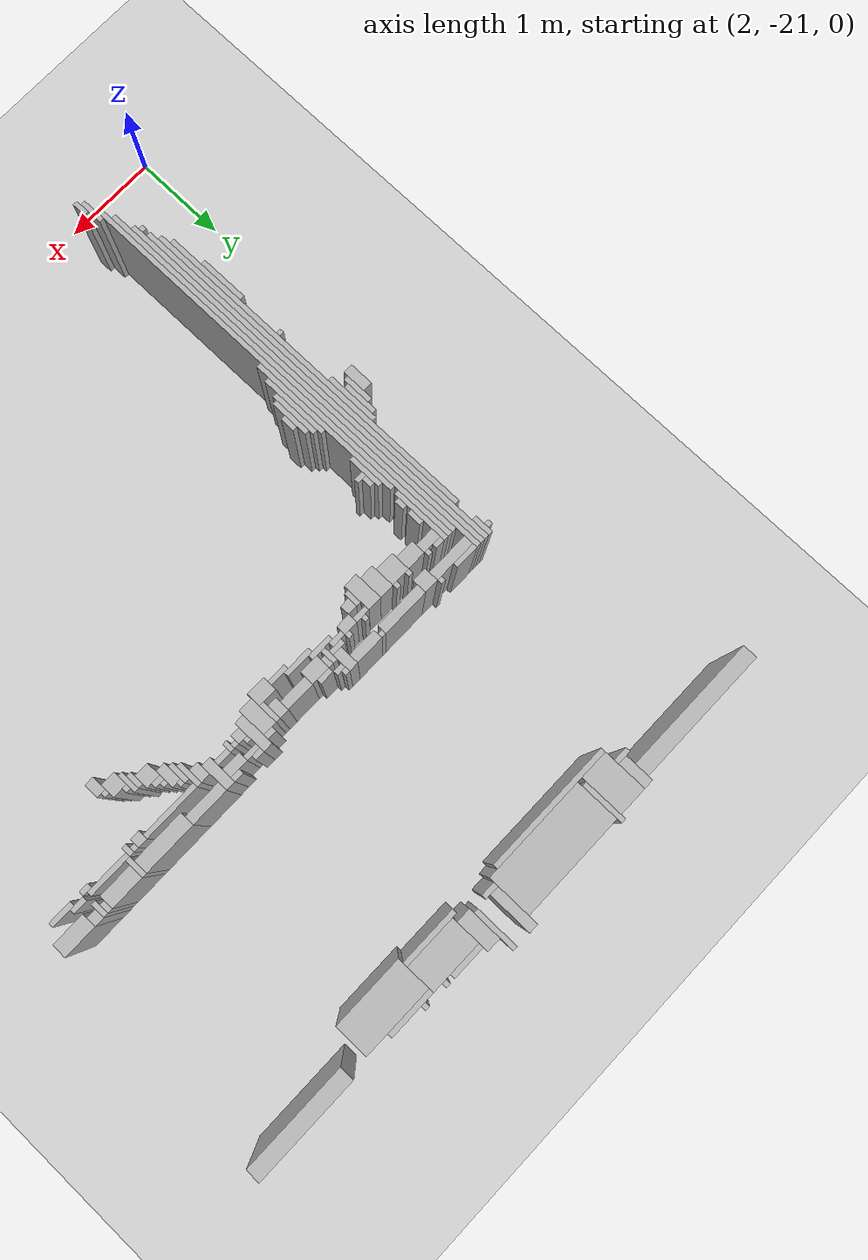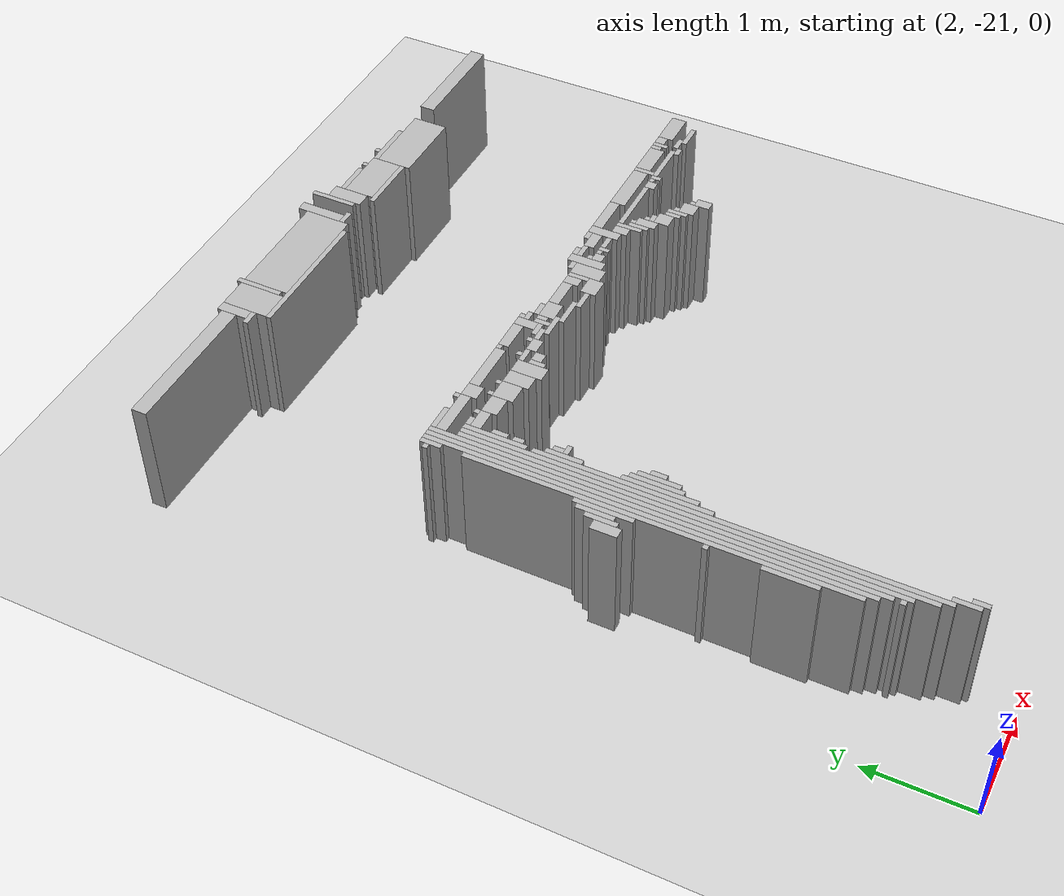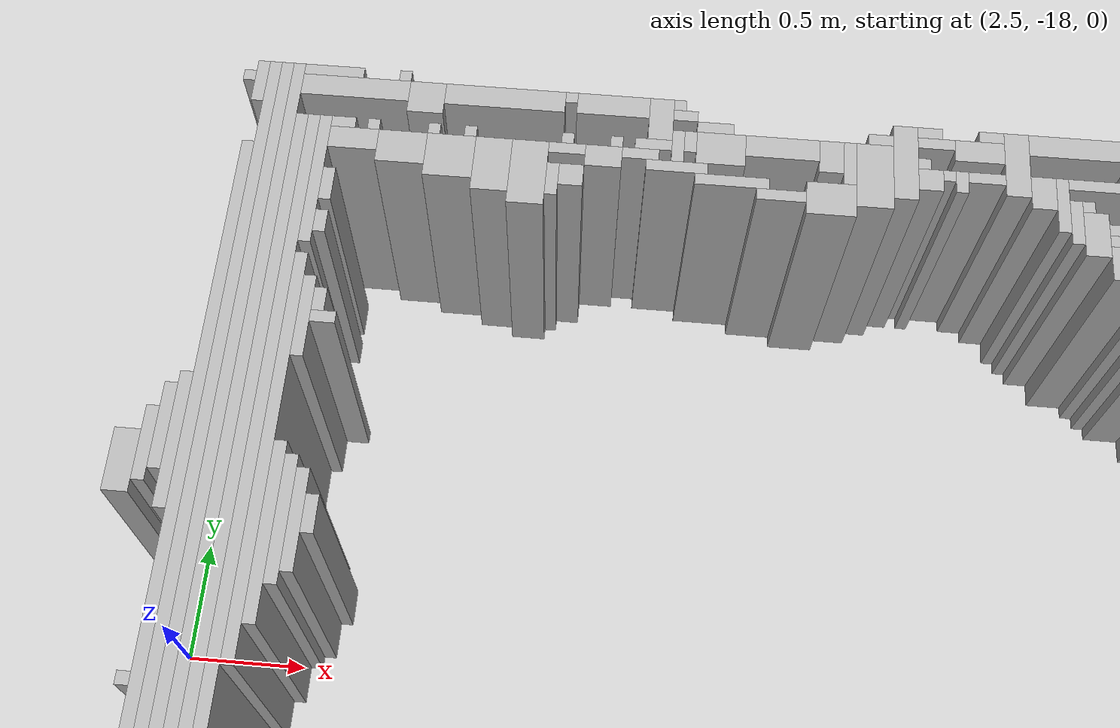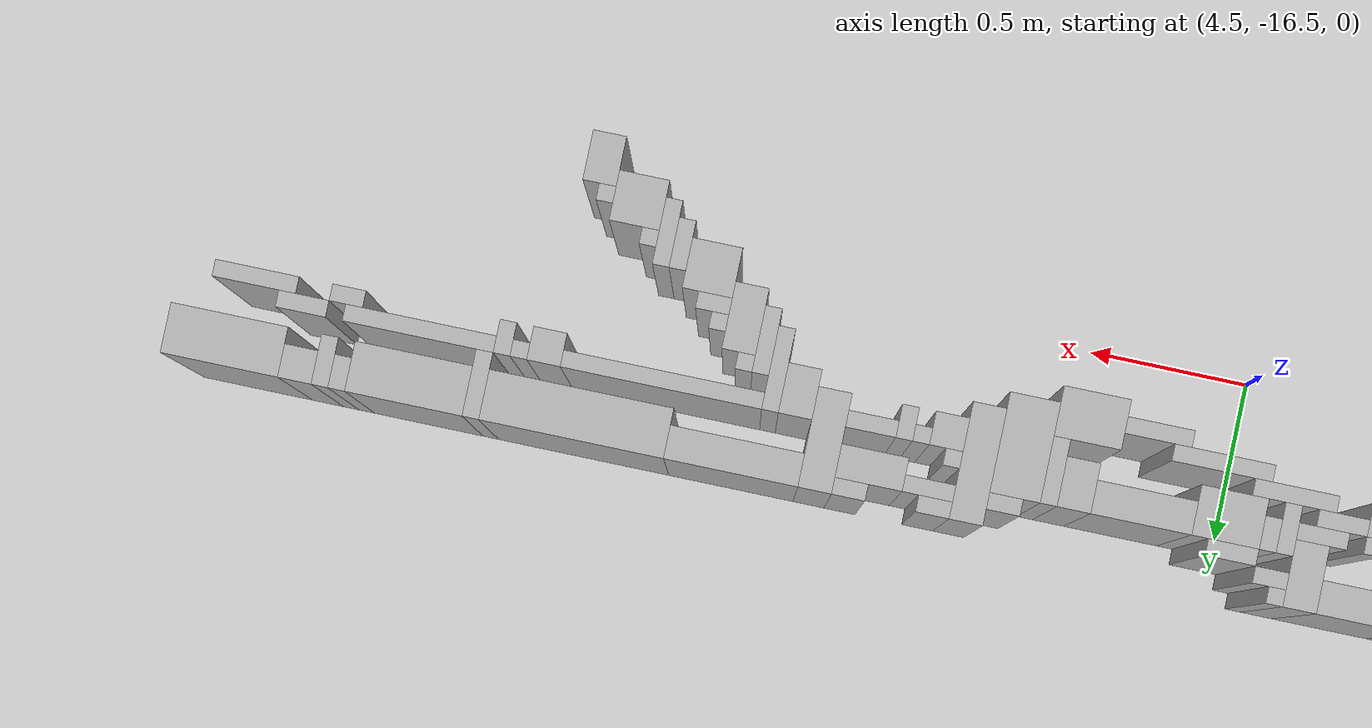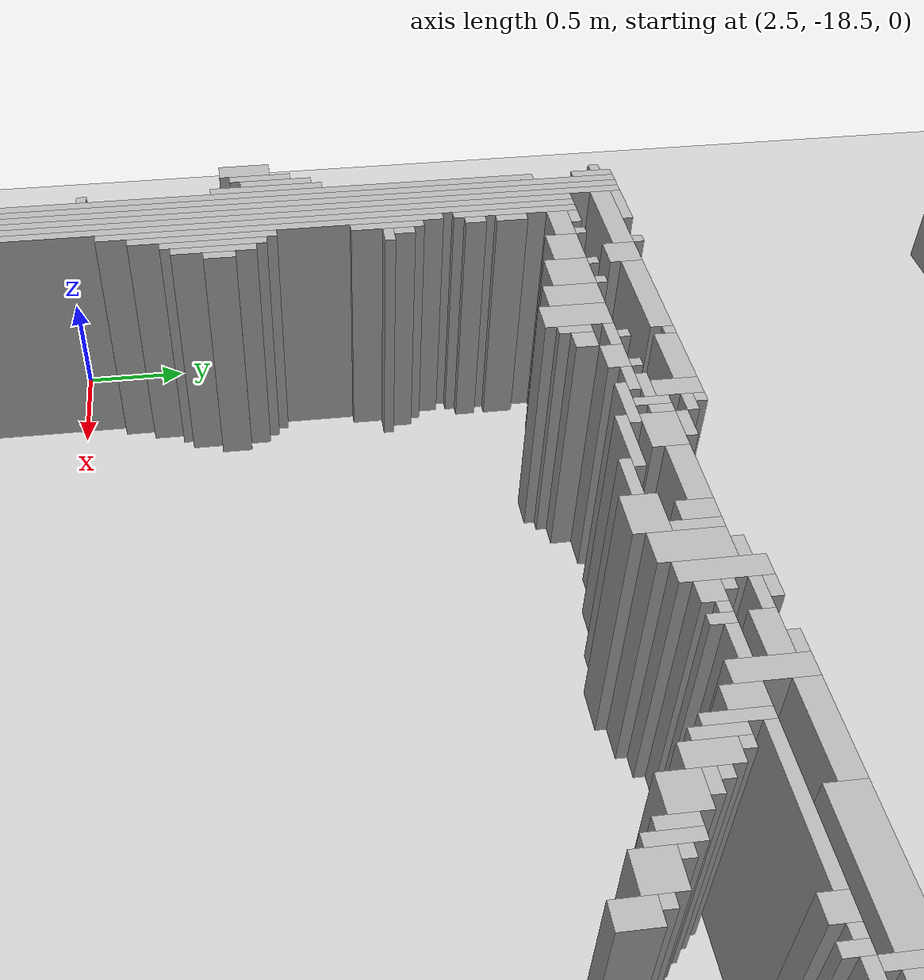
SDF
<sdf version="1.6">
 <world name="d10_floor">
  <include><uri>model://sun</uri></include>
  <include><uri>model://ground_plane</uri></include>
  <model name="d10_walls">
   <static>true</static>
   <link name="w15">
    <pose>3.000 -20.520 0.60 0 0 0</pose>
    <collision name="c"><geometry><box><size>0.050 0.150 1.20</size></box></geometry></collision>
    <visual name="v">
     <geometry><box><size>0.050 0.150 1.20</size></box></geometry>
     <material><ambient>0.6 0.6 0.6 1</ambient><diffuse>0.7 0.7 0.7 1</diffuse></material>
    </visual>
   </link>
   <link name="w21">
    <pose>2.950 -20.420 0.60 0 0 0</pose>
    <collision name="c"><geometry><box><size>0.050 0.250 1.20</size></box></geometry></collision>
    <visual name="v">
     <geometry><box><size>0.050 0.250 1.20</size></box></geometry>
     <material><ambient>0.6 0.6 0.6 1</ambient><diffuse>0.7 0.7 0.7 1</diffuse></material>
    </visual>
   </link>
   <link name="w41">
    <pose>2.900 -18.170 0.60 0 0 0</pose>
    <collision name="c"><geometry><box><size>0.050 4.350 1.20</size></box></geometry></collision>
    <visual name="v">
     <geometry><box><size>0.050 4.350 1.20</size></box></geometry>
     <material><ambient>0.6 0.6 0.6 1</ambient><diffuse>0.7 0.7 0.7 1</diffuse></material>
    </visual>
   </link>
   <link name="w50">
    <pose>2.850 -18.120 0.60 0 0 0</pose>
    <collision name="c"><geometry><box><size>0.050 4.250 1.20</size></box></geometry></collision>
    <visual name="v">
     <geometry><box><size>0.050 4.250 1.20</size></box></geometry>
     <material><ambient>0.6 0.6 0.6 1</ambient><diffuse>0.7 0.7 0.7 1</diffuse></material>
    </visual>
   </link>
   <link name="w59">
    <pose>2.800 -17.895 0.60 0 0 0</pose>
    <collision name="c"><geometry><box><size>0.050 4.300 1.20</size></box></geometry></collision>
    <visual name="v">
     <geometry><box><size>0.050 4.300 1.20</size></box></geometry>
     <material><ambient>0.6 0.6 0.6 1</ambient><diffuse>0.7 0.7 0.7 1</diffuse></material>
    </visual>
   </link>
   <link name="w64">
    <pose>2.750 -19.970 0.60 0 0 0</pose>
    <collision name="c"><geometry><box><size>0.050 0.050 1.20</size></box></geometry></collision>
    <visual name="v">
     <geometry><box><size>0.050 0.050 1.20</size></box></geometry>
     <material><ambient>0.6 0.6 0.6 1</ambient><diffuse>0.7 0.7 0.7 1</diffuse></material>
    </visual>
   </link>
   <link name="w68">
    <pose>2.750 -17.820 0.60 0 0 0</pose>
    <collision name="c"><geometry><box><size>0.050 4.150 1.20</size></box></geometry></collision>
    <visual name="v">
     <geometry><box><size>0.050 4.150 1.20</size></box></geometry>
     <material><ambient>0.6 0.6 0.6 1</ambient><diffuse>0.7 0.7 0.7 1</diffuse></material>
    </visual>
   </link>
   <link name="w71">
    <pose>2.700 -17.770 0.60 0 0 0</pose>
    <collision name="c"><geometry><box><size>0.050 4.050 1.20</size></box></geometry></collision>
    <visual name="v">
     <geometry><box><size>0.050 4.050 1.20</size></box></geometry>
     <material><ambient>0.6 0.6 0.6 1</ambient><diffuse>0.7 0.7 0.7 1</diffuse></material>
    </visual>
   </link>
   <link name="w75">
    <pose>2.650 -17.920 0.60 0 0 0</pose>
    <collision name="c"><geometry><box><size>0.050 3.550 1.20</size></box></geometry></collision>
    <visual name="v">
     <geometry><box><size>0.050 3.550 1.20</size></box></geometry>
     <material><ambient>0.6 0.6 0.6 1</ambient><diffuse>0.7 0.7 0.7 1</diffuse></material>
    </visual>
   </link>
   <link name="w93">
    <pose>2.600 -19.095 0.60 0 0 0</pose>
    <collision name="c"><geometry><box><size>0.050 0.500 1.20</size></box></geometry></collision>
    <visual name="v">
     <geometry><box><size>0.050 0.500 1.20</size></box></geometry>
     <material><ambient>0.6 0.6 0.6 1</ambient><diffuse>0.7 0.7 0.7 1</diffuse></material>
    </visual>
   </link>
   <link name="w126">
    <pose>2.600 -18.370 0.60 0 0 0</pose>
    <collision name="c"><geometry><box><size>0.050 0.050 1.20</size></box></geometry></collision>
    <visual name="v">
     <geometry><box><size>0.050 0.050 1.20</size></box></geometry>
     <material><ambient>0.6 0.6 0.6 1</ambient><diffuse>0.7 0.7 0.7 1</diffuse></material>
    </visual>
   </link>
   <link name="w128">
    <pose>2.950 -17.470 0.60 0 0 0</pose>
    <collision name="c"><geometry><box><size>0.050 1.650 1.20</size></box></geometry></collision>
    <visual name="v">
     <geometry><box><size>0.050 1.650 1.20</size></box></geometry>
     <material><ambient>0.6 0.6 0.6 1</ambient><diffuse>0.7 0.7 0.7 1</diffuse></material>
    </visual>
   </link>
   <link name="w133">
    <pose>3.000 -17.795 0.60 0 0 0</pose>
    <collision name="c"><geometry><box><size>0.050 0.700 1.20</size></box></geometry></collision>
    <visual name="v">
     <geometry><box><size>0.050 0.700 1.20</size></box></geometry>
     <material><ambient>0.6 0.6 0.6 1</ambient><diffuse>0.7 0.7 0.7 1</diffuse></material>
    </visual>
   </link>
   <link name="w152">
    <pose>3.050 -17.745 0.60 0 0 0</pose>
    <collision name="c"><geometry><box><size>0.050 0.500 1.20</size></box></geometry></collision>
    <visual name="v">
     <geometry><box><size>0.050 0.500 1.20</size></box></geometry>
     <material><ambient>0.6 0.6 0.6 1</ambient><diffuse>0.7 0.7 0.7 1</diffuse></material>
    </visual>
   </link>
   <link name="w158">
    <pose>3.100 -17.745 0.60 0 0 0</pose>
    <collision name="c"><geometry><box><size>0.050 0.400 1.20</size></box></geometry></collision>
    <visual name="v">
     <geometry><box><size>0.050 0.400 1.20</size></box></geometry>
     <material><ambient>0.6 0.6 0.6 1</ambient><diffuse>0.7 0.7 0.7 1</diffuse></material>
    </visual>
   </link>
   <link name="w197">
    <pose>3.150 -17.720 0.60 0 0 0</pose>
    <collision name="c"><geometry><box><size>0.050 0.150 1.20</size></box></geometry></collision>
    <visual name="v">
     <geometry><box><size>0.050 0.150 1.20</size></box></geometry>
     <material><ambient>0.6 0.6 0.6 1</ambient><diffuse>0.7 0.7 0.7 1</diffuse></material>
    </visual>
   </link>
   <link name="w206">
    <pose>2.600 -17.470 0.60 0 0 0</pose>
    <collision name="c"><geometry><box><size>0.050 0.550 1.20</size></box></geometry></collision>
    <visual name="v">
     <geometry><box><size>0.050 0.550 1.20</size></box></geometry>
     <material><ambient>0.6 0.6 0.6 1</ambient><diffuse>0.7 0.7 0.7 1</diffuse></material>
    </visual>
   </link>
   <link name="w215">
    <pose>2.425 -17.570 0.60 0 0 0</pose>
    <collision name="c"><geometry><box><size>0.100 0.250 1.20</size></box></geometry></collision>
    <visual name="v">
     <geometry><box><size>0.100 0.250 1.20</size></box></geometry>
     <material><ambient>0.6 0.6 0.6 1</ambient><diffuse>0.7 0.7 0.7 1</diffuse></material>
    </visual>
   </link>
   <link name="w221">
    <pose>2.500 -17.495 0.60 0 0 0</pose>
    <collision name="c"><geometry><box><size>0.050 0.300 1.20</size></box></geometry></collision>
    <visual name="v">
     <geometry><box><size>0.050 0.300 1.20</size></box></geometry>
     <material><ambient>0.6 0.6 0.6 1</ambient><diffuse>0.7 0.7 0.7 1</diffuse></material>
    </visual>
   </link>
   <link name="w229">
    <pose>2.550 -17.420 0.60 0 0 0</pose>
    <collision name="c"><geometry><box><size>0.050 0.350 1.20</size></box></geometry></collision>
    <visual name="v">
     <geometry><box><size>0.050 0.350 1.20</size></box></geometry>
     <material><ambient>0.6 0.6 0.6 1</ambient><diffuse>0.7 0.7 0.7 1</diffuse></material>
    </visual>
   </link>
   <link name="w247">
    <pose>3.000 -16.920 0.60 0 0 0</pose>
    <collision name="c"><geometry><box><size>0.050 0.350 1.20</size></box></geometry></collision>
    <visual name="v">
     <geometry><box><size>0.050 0.350 1.20</size></box></geometry>
     <material><ambient>0.6 0.6 0.6 1</ambient><diffuse>0.7 0.7 0.7 1</diffuse></material>
    </visual>
   </link>
   <link name="w251">
    <pose>3.075 -16.920 0.60 0 0 0</pose>
    <collision name="c"><geometry><box><size>0.100 0.050 1.20</size></box></geometry></collision>
    <visual name="v">
     <geometry><box><size>0.100 0.050 1.20</size></box></geometry>
     <material><ambient>0.6 0.6 0.6 1</ambient><diffuse>0.7 0.7 0.7 1</diffuse></material>
    </visual>
   </link>
   <link name="w254">
    <pose>3.050 -16.845 0.60 0 0 0</pose>
    <collision name="c"><geometry><box><size>0.050 0.100 1.20</size></box></geometry></collision>
    <visual name="v">
     <geometry><box><size>0.050 0.100 1.20</size></box></geometry>
     <material><ambient>0.6 0.6 0.6 1</ambient><diffuse>0.7 0.7 0.7 1</diffuse></material>
    </visual>
   </link>
   <link name="w261">
    <pose>6.575 -16.670 0.60 0 0 0</pose>
    <collision name="c"><geometry><box><size>0.100 0.150 1.20</size></box></geometry></collision>
    <visual name="v">
     <geometry><box><size>0.100 0.150 1.20</size></box></geometry>
     <material><ambient>0.6 0.6 0.6 1</ambient><diffuse>0.7 0.7 0.7 1</diffuse></material>
    </visual>
   </link>
   <link name="w269">
    <pose>6.450 -16.570 0.60 0 0 0</pose>
    <collision name="c"><geometry><box><size>0.150 0.150 1.20</size></box></geometry></collision>
    <visual name="v">
     <geometry><box><size>0.150 0.150 1.20</size></box></geometry>
     <material><ambient>0.6 0.6 0.6 1</ambient><diffuse>0.7 0.7 0.7 1</diffuse></material>
    </visual>
   </link>
   <link name="w274">
    <pose>2.950 -16.295 0.60 0 0 0</pose>
    <collision name="c"><geometry><box><size>0.050 0.600 1.20</size></box></geometry></collision>
    <visual name="v">
     <geometry><box><size>0.050 0.600 1.20</size></box></geometry>
     <material><ambient>0.6 0.6 0.6 1</ambient><diffuse>0.7 0.7 0.7 1</diffuse></material>
    </visual>
   </link>
   <link name="w275">
    <pose>6.350 -16.495 0.60 0 0 0</pose>
    <collision name="c"><geometry><box><size>0.050 0.200 1.20</size></box></geometry></collision>
    <visual name="v">
     <geometry><box><size>0.050 0.200 1.20</size></box></geometry>
     <material><ambient>0.6 0.6 0.6 1</ambient><diffuse>0.7 0.7 0.7 1</diffuse></material>
    </visual>
   </link>
   <link name="w276">
    <pose>6.550 -16.570 0.60 0 0 0</pose>
    <collision name="c"><geometry><box><size>0.050 0.050 1.20</size></box></geometry></collision>
    <visual name="v">
     <geometry><box><size>0.050 0.050 1.20</size></box></geometry>
     <material><ambient>0.6 0.6 0.6 1</ambient><diffuse>0.7 0.7 0.7 1</diffuse></material>
    </visual>
   </link>
   <link name="w281">
    <pose>3.000 -16.495 0.60 0 0 0</pose>
    <collision name="c"><geometry><box><size>0.050 0.100 1.20</size></box></geometry></collision>
    <visual name="v">
     <geometry><box><size>0.050 0.100 1.20</size></box></geometry>
     <material><ambient>0.6 0.6 0.6 1</ambient><diffuse>0.7 0.7 0.7 1</diffuse></material>
    </visual>
   </link>
   <link name="w282">
    <pose>6.300 -16.470 0.60 0 0 0</pose>
    <collision name="c"><geometry><box><size>0.050 0.150 1.20</size></box></geometry></collision>
    <visual name="v">
     <geometry><box><size>0.050 0.150 1.20</size></box></geometry>
     <material><ambient>0.6 0.6 0.6 1</ambient><diffuse>0.7 0.7 0.7 1</diffuse></material>
    </visual>
   </link>
   <link name="w285">
    <pose>6.200 -16.420 0.60 0 0 0</pose>
    <collision name="c"><geometry><box><size>0.150 0.150 1.20</size></box></geometry></collision>
    <visual name="v">
     <geometry><box><size>0.150 0.150 1.20</size></box></geometry>
     <material><ambient>0.6 0.6 0.6 1</ambient><diffuse>0.7 0.7 0.7 1</diffuse></material>
    </visual>
   </link>
   <link name="w286">
    <pose>6.400 -16.470 0.60 0 0 0</pose>
    <collision name="c"><geometry><box><size>0.050 0.050 1.20</size></box></geometry></collision>
    <visual name="v">
     <geometry><box><size>0.050 0.050 1.20</size></box></geometry>
     <material><ambient>0.6 0.6 0.6 1</ambient><diffuse>0.7 0.7 0.7 1</diffuse></material>
    </visual>
   </link>
   <link name="w290">
    <pose>3.000 -16.320 0.60 0 0 0</pose>
    <collision name="c"><geometry><box><size>0.050 0.150 1.20</size></box></geometry></collision>
    <visual name="v">
     <geometry><box><size>0.050 0.150 1.20</size></box></geometry>
     <material><ambient>0.6 0.6 0.6 1</ambient><diffuse>0.7 0.7 0.7 1</diffuse></material>
    </visual>
   </link>
   <link name="w291">
    <pose>6.075 -16.295 0.60 0 0 0</pose>
    <collision name="c"><geometry><box><size>0.100 0.200 1.20</size></box></geometry></collision>
    <visual name="v">
     <geometry><box><size>0.100 0.200 1.20</size></box></geometry>
     <material><ambient>0.6 0.6 0.6 1</ambient><diffuse>0.7 0.7 0.7 1</diffuse></material>
    </visual>
   </link>
   <link name="w297">
    <pose>3.800 -16.195 0.60 0 0 0</pose>
    <collision name="c"><geometry><box><size>0.150 0.300 1.20</size></box></geometry></collision>
    <visual name="v">
     <geometry><box><size>0.150 0.300 1.20</size></box></geometry>
     <material><ambient>0.6 0.6 0.6 1</ambient><diffuse>0.7 0.7 0.7 1</diffuse></material>
    </visual>
   </link>
   <link name="w298">
    <pose>6.000 -16.245 0.60 0 0 0</pose>
    <collision name="c"><geometry><box><size>0.050 0.200 1.20</size></box></geometry></collision>
    <visual name="v">
     <geometry><box><size>0.050 0.200 1.20</size></box></geometry>
     <material><ambient>0.6 0.6 0.6 1</ambient><diffuse>0.7 0.7 0.7 1</diffuse></material>
    </visual>
   </link>
   <link name="w299">
    <pose>6.175 -16.320 0.60 0 0 0</pose>
    <collision name="c"><geometry><box><size>0.100 0.050 1.20</size></box></geometry></collision>
    <visual name="v">
     <geometry><box><size>0.100 0.050 1.20</size></box></geometry>
     <material><ambient>0.6 0.6 0.6 1</ambient><diffuse>0.7 0.7 0.7 1</diffuse></material>
    </visual>
   </link>
   <link name="w310">
    <pose>3.650 -16.170 0.60 0 0 0</pose>
    <collision name="c"><geometry><box><size>0.150 0.250 1.20</size></box></geometry></collision>
    <visual name="v">
     <geometry><box><size>0.150 0.250 1.20</size></box></geometry>
     <material><ambient>0.6 0.6 0.6 1</ambient><diffuse>0.7 0.7 0.7 1</diffuse></material>
    </visual>
   </link>
   <link name="w311">
    <pose>3.900 -16.220 0.60 0 0 0</pose>
    <collision name="c"><geometry><box><size>0.050 0.150 1.20</size></box></geometry></collision>
    <visual name="v">
     <geometry><box><size>0.050 0.150 1.20</size></box></geometry>
     <material><ambient>0.6 0.6 0.6 1</ambient><diffuse>0.7 0.7 0.7 1</diffuse></material>
    </visual>
   </link>
   <link name="w312">
    <pose>5.025 -16.220 0.60 0 0 0</pose>
    <collision name="c"><geometry><box><size>0.200 0.150 1.20</size></box></geometry></collision>
    <visual name="v">
     <geometry><box><size>0.200 0.150 1.20</size></box></geometry>
     <material><ambient>0.6 0.6 0.6 1</ambient><diffuse>0.7 0.7 0.7 1</diffuse></material>
    </visual>
   </link>
   <link name="w313">
    <pose>5.950 -16.170 0.60 0 0 0</pose>
    <collision name="c"><geometry><box><size>0.050 0.250 1.20</size></box></geometry></collision>
    <visual name="v">
     <geometry><box><size>0.050 0.250 1.20</size></box></geometry>
     <material><ambient>0.6 0.6 0.6 1</ambient><diffuse>0.7 0.7 0.7 1</diffuse></material>
    </visual>
   </link>
   <link name="w314">
    <pose>6.150 -16.270 0.60 0 0 0</pose>
    <collision name="c"><geometry><box><size>0.050 0.050 1.20</size></box></geometry></collision>
    <visual name="v">
     <geometry><box><size>0.050 0.050 1.20</size></box></geometry>
     <material><ambient>0.6 0.6 0.6 1</ambient><diffuse>0.7 0.7 0.7 1</diffuse></material>
    </visual>
   </link>
   <link name="w328">
    <pose>3.475 -16.145 0.60 0 0 0</pose>
    <collision name="c"><geometry><box><size>0.200 0.200 1.20</size></box></geometry></collision>
    <visual name="v">
     <geometry><box><size>0.200 0.200 1.20</size></box></geometry>
     <material><ambient>0.6 0.6 0.6 1</ambient><diffuse>0.7 0.7 0.7 1</diffuse></material>
    </visual>
   </link>
   <link name="w329">
    <pose>3.975 -16.195 0.60 0 0 0</pose>
    <collision name="c"><geometry><box><size>0.100 0.100 1.20</size></box></geometry></collision>
    <visual name="v">
     <geometry><box><size>0.100 0.100 1.20</size></box></geometry>
     <material><ambient>0.6 0.6 0.6 1</ambient><diffuse>0.7 0.7 0.7 1</diffuse></material>
    </visual>
   </link>
   <link name="w330">
    <pose>4.825 -16.220 0.60 0 0 0</pose>
    <collision name="c"><geometry><box><size>0.200 0.050 1.20</size></box></geometry></collision>
    <visual name="v">
     <geometry><box><size>0.200 0.050 1.20</size></box></geometry>
     <material><ambient>0.6 0.6 0.6 1</ambient><diffuse>0.7 0.7 0.7 1</diffuse></material>
    </visual>
   </link>
   <link name="w331">
    <pose>5.200 -16.095 0.60 0 0 0</pose>
    <collision name="c"><geometry><box><size>0.150 0.300 1.20</size></box></geometry></collision>
    <visual name="v">
     <geometry><box><size>0.150 0.300 1.20</size></box></geometry>
     <material><ambient>0.6 0.6 0.6 1</ambient><diffuse>0.7 0.7 0.7 1</diffuse></material>
    </visual>
   </link>
   <link name="w347">
    <pose>3.275 -16.120 0.60 0 0 0</pose>
    <collision name="c"><geometry><box><size>0.200 0.150 1.20</size></box></geometry></collision>
    <visual name="v">
     <geometry><box><size>0.200 0.150 1.20</size></box></geometry>
     <material><ambient>0.6 0.6 0.6 1</ambient><diffuse>0.7 0.7 0.7 1</diffuse></material>
    </visual>
   </link>
   <link name="w348">
    <pose>4.625 -16.170 0.60 0 0 0</pose>
    <collision name="c"><geometry><box><size>0.300 0.050 1.20</size></box></geometry></collision>
    <visual name="v">
     <geometry><box><size>0.300 0.050 1.20</size></box></geometry>
     <material><ambient>0.6 0.6 0.6 1</ambient><diffuse>0.7 0.7 0.7 1</diffuse></material>
    </visual>
   </link>
   <link name="w349">
    <pose>5.325 -16.020 0.60 0 0 0</pose>
    <collision name="c"><geometry><box><size>0.100 0.350 1.20</size></box></geometry></collision>
    <visual name="v">
     <geometry><box><size>0.100 0.350 1.20</size></box></geometry>
     <material><ambient>0.6 0.6 0.6 1</ambient><diffuse>0.7 0.7 0.7 1</diffuse></material>
    </visual>
   </link>
   <link name="w350">
    <pose>5.875 -16.120 0.60 0 0 0</pose>
    <collision name="c"><geometry><box><size>0.100 0.150 1.20</size></box></geometry></collision>
    <visual name="v">
     <geometry><box><size>0.100 0.150 1.20</size></box></geometry>
     <material><ambient>0.6 0.6 0.6 1</ambient><diffuse>0.7 0.7 0.7 1</diffuse></material>
    </visual>
   </link>
   <link name="w351">
    <pose>6.050 -16.170 0.60 0 0 0</pose>
    <collision name="c"><geometry><box><size>0.050 0.050 1.20</size></box></geometry></collision>
    <visual name="v">
     <geometry><box><size>0.050 0.050 1.20</size></box></geometry>
     <material><ambient>0.6 0.6 0.6 1</ambient><diffuse>0.7 0.7 0.7 1</diffuse></material>
    </visual>
   </link>
   <link name="w376">
    <pose>3.075 -16.095 0.60 0 0 0</pose>
    <collision name="c"><geometry><box><size>0.200 0.100 1.20</size></box></geometry></collision>
    <visual name="v">
     <geometry><box><size>0.200 0.100 1.20</size></box></geometry>
     <material><ambient>0.6 0.6 0.6 1</ambient><diffuse>0.7 0.7 0.7 1</diffuse></material>
    </visual>
   </link>
   <link name="w377">
    <pose>4.100 -16.095 0.60 0 0 0</pose>
    <collision name="c"><geometry><box><size>0.150 0.100 1.20</size></box></geometry></collision>
    <visual name="v">
     <geometry><box><size>0.150 0.100 1.20</size></box></geometry>
     <material><ambient>0.6 0.6 0.6 1</ambient><diffuse>0.7 0.7 0.7 1</diffuse></material>
    </visual>
   </link>
   <link name="w378">
    <pose>4.400 -16.120 0.60 0 0 0</pose>
    <collision name="c"><geometry><box><size>0.250 0.050 1.20</size></box></geometry></collision>
    <visual name="v">
     <geometry><box><size>0.250 0.050 1.20</size></box></geometry>
     <material><ambient>0.6 0.6 0.6 1</ambient><diffuse>0.7 0.7 0.7 1</diffuse></material>
    </visual>
   </link>
   <link name="w379">
    <pose>5.100 -16.045 0.60 0 0 0</pose>
    <collision name="c"><geometry><box><size>0.050 0.200 1.20</size></box></geometry></collision>
    <visual name="v">
     <geometry><box><size>0.050 0.200 1.20</size></box></geometry>
     <material><ambient>0.6 0.6 0.6 1</ambient><diffuse>0.7 0.7 0.7 1</diffuse></material>
    </visual>
   </link>
   <link name="w380">
    <pose>5.425 -16.095 0.60 0 0 0</pose>
    <collision name="c"><geometry><box><size>0.100 0.100 1.20</size></box></geometry></collision>
    <visual name="v">
     <geometry><box><size>0.100 0.100 1.20</size></box></geometry>
     <material><ambient>0.6 0.6 0.6 1</ambient><diffuse>0.7 0.7 0.7 1</diffuse></material>
    </visual>
   </link>
   <link name="w381">
    <pose>5.550 -16.095 0.60 0 0 0</pose>
    <collision name="c"><geometry><box><size>0.050 0.100 1.20</size></box></geometry></collision>
    <visual name="v">
     <geometry><box><size>0.050 0.100 1.20</size></box></geometry>
     <material><ambient>0.6 0.6 0.6 1</ambient><diffuse>0.7 0.7 0.7 1</diffuse></material>
    </visual>
   </link>
   <link name="w382">
    <pose>5.775 -15.995 0.60 0 0 0</pose>
    <collision name="c"><geometry><box><size>0.100 0.300 1.20</size></box></geometry></collision>
    <visual name="v">
     <geometry><box><size>0.100 0.300 1.20</size></box></geometry>
     <material><ambient>0.6 0.6 0.6 1</ambient><diffuse>0.7 0.7 0.7 1</diffuse></material>
    </visual>
   </link>
   <link name="w383">
    <pose>6.625 -16.095 0.60 0 0 0</pose>
    <collision name="c"><geometry><box><size>0.100 0.100 1.20</size></box></geometry></collision>
    <visual name="v">
     <geometry><box><size>0.100 0.100 1.20</size></box></geometry>
     <material><ambient>0.6 0.6 0.6 1</ambient><diffuse>0.7 0.7 0.7 1</diffuse></material>
    </visual>
   </link>
   <link name="w384">
    <pose>6.750 -16.095 0.60 0 0 0</pose>
    <collision name="c"><geometry><box><size>0.050 0.100 1.20</size></box></geometry></collision>
    <visual name="v">
     <geometry><box><size>0.050 0.100 1.20</size></box></geometry>
     <material><ambient>0.6 0.6 0.6 1</ambient><diffuse>0.7 0.7 0.7 1</diffuse></material>
    </visual>
   </link>
   <link name="w385">
    <pose>7.225 -16.120 0.60 0 0 0</pose>
    <collision name="c"><geometry><box><size>0.100 0.050 1.20</size></box></geometry></collision>
    <visual name="v">
     <geometry><box><size>0.100 0.050 1.20</size></box></geometry>
     <material><ambient>0.6 0.6 0.6 1</ambient><diffuse>0.7 0.7 0.7 1</diffuse></material>
    </visual>
   </link>
   <link name="w386">
    <pose>7.500 -16.120 0.60 0 0 0</pose>
    <collision name="c"><geometry><box><size>0.250 0.050 1.20</size></box></geometry></collision>
    <visual name="v">
     <geometry><box><size>0.250 0.050 1.20</size></box></geometry>
     <material><ambient>0.6 0.6 0.6 1</ambient><diffuse>0.7 0.7 0.7 1</diffuse></material>
    </visual>
   </link>
   <link name="w409">
    <pose>3.950 -16.070 0.60 0 0 0</pose>
    <collision name="c"><geometry><box><size>0.150 0.050 1.20</size></box></geometry></collision>
    <visual name="v">
     <geometry><box><size>0.150 0.050 1.20</size></box></geometry>
     <material><ambient>0.6 0.6 0.6 1</ambient><diffuse>0.7 0.7 0.7 1</diffuse></material>
    </visual>
   </link>
   <link name="w410">
    <pose>4.250 -16.070 0.60 0 0 0</pose>
    <collision name="c"><geometry><box><size>0.150 0.050 1.20</size></box></geometry></collision>
    <visual name="v">
     <geometry><box><size>0.150 0.050 1.20</size></box></geometry>
     <material><ambient>0.6 0.6 0.6 1</ambient><diffuse>0.7 0.7 0.7 1</diffuse></material>
    </visual>
   </link>
   <link name="w411">
    <pose>4.400 -16.020 0.60 0 0 0</pose>
    <collision name="c"><geometry><box><size>0.050 0.150 1.20</size></box></geometry></collision>
    <visual name="v">
     <geometry><box><size>0.050 0.150 1.20</size></box></geometry>
     <material><ambient>0.6 0.6 0.6 1</ambient><diffuse>0.7 0.7 0.7 1</diffuse></material>
    </visual>
   </link>
   <link name="w412">
    <pose>4.575 -16.020 0.60 0 0 0</pose>
    <collision name="c"><geometry><box><size>0.200 0.150 1.20</size></box></geometry></collision>
    <visual name="v">
     <geometry><box><size>0.200 0.150 1.20</size></box></geometry>
     <material><ambient>0.6 0.6 0.6 1</ambient><diffuse>0.7 0.7 0.7 1</diffuse></material>
    </visual>
   </link>
   <link name="w413">
    <pose>5.025 -16.020 0.60 0 0 0</pose>
    <collision name="c"><geometry><box><size>0.100 0.150 1.20</size></box></geometry></collision>
    <visual name="v">
     <geometry><box><size>0.100 0.150 1.20</size></box></geometry>
     <material><ambient>0.6 0.6 0.6 1</ambient><diffuse>0.7 0.7 0.7 1</diffuse></material>
    </visual>
   </link>
   <link name="w414">
    <pose>5.500 -16.070 0.60 0 0 0</pose>
    <collision name="c"><geometry><box><size>0.050 0.050 1.20</size></box></geometry></collision>
    <visual name="v">
     <geometry><box><size>0.050 0.050 1.20</size></box></geometry>
     <material><ambient>0.6 0.6 0.6 1</ambient><diffuse>0.7 0.7 0.7 1</diffuse></material>
    </visual>
   </link>
   <link name="w415">
    <pose>5.650 -16.070 0.60 0 0 0</pose>
    <collision name="c"><geometry><box><size>0.150 0.050 1.20</size></box></geometry></collision>
    <visual name="v">
     <geometry><box><size>0.150 0.050 1.20</size></box></geometry>
     <material><ambient>0.6 0.6 0.6 1</ambient><diffuse>0.7 0.7 0.7 1</diffuse></material>
    </visual>
   </link>
   <link name="w416">
    <pose>6.275 -16.070 0.60 0 0 0</pose>
    <collision name="c"><geometry><box><size>0.600 0.050 1.20</size></box></geometry></collision>
    <visual name="v">
     <geometry><box><size>0.600 0.050 1.20</size></box></geometry>
     <material><ambient>0.6 0.6 0.6 1</ambient><diffuse>0.7 0.7 0.7 1</diffuse></material>
    </visual>
   </link>
   <link name="w417">
    <pose>6.700 -16.070 0.60 0 0 0</pose>
    <collision name="c"><geometry><box><size>0.050 0.050 1.20</size></box></geometry></collision>
    <visual name="v">
     <geometry><box><size>0.050 0.050 1.20</size></box></geometry>
     <material><ambient>0.6 0.6 0.6 1</ambient><diffuse>0.7 0.7 0.7 1</diffuse></material>
    </visual>
   </link>
   <link name="w418">
    <pose>7.000 -16.070 0.60 0 0 0</pose>
    <collision name="c"><geometry><box><size>0.450 0.050 1.20</size></box></geometry></collision>
    <visual name="v">
     <geometry><box><size>0.450 0.050 1.20</size></box></geometry>
     <material><ambient>0.6 0.6 0.6 1</ambient><diffuse>0.7 0.7 0.7 1</diffuse></material>
    </visual>
   </link>
   <link name="w419">
    <pose>7.350 -16.070 0.60 0 0 0</pose>
    <collision name="c"><geometry><box><size>0.150 0.050 1.20</size></box></geometry></collision>
    <visual name="v">
     <geometry><box><size>0.150 0.050 1.20</size></box></geometry>
     <material><ambient>0.6 0.6 0.6 1</ambient><diffuse>0.7 0.7 0.7 1</diffuse></material>
    </visual>
   </link>
   <link name="w434">
    <pose>3.025 -16.020 0.60 0 0 0</pose>
    <collision name="c"><geometry><box><size>0.100 0.050 1.20</size></box></geometry></collision>
    <visual name="v">
     <geometry><box><size>0.100 0.050 1.20</size></box></geometry>
     <material><ambient>0.6 0.6 0.6 1</ambient><diffuse>0.7 0.7 0.7 1</diffuse></material>
    </visual>
   </link>
   <link name="w435">
    <pose>3.150 -16.020 0.60 0 0 0</pose>
    <collision name="c"><geometry><box><size>0.050 0.050 1.20</size></box></geometry></collision>
    <visual name="v">
     <geometry><box><size>0.050 0.050 1.20</size></box></geometry>
     <material><ambient>0.6 0.6 0.6 1</ambient><diffuse>0.7 0.7 0.7 1</diffuse></material>
    </visual>
   </link>
   <link name="w436">
    <pose>3.400 -16.020 0.60 0 0 0</pose>
    <collision name="c"><geometry><box><size>0.050 0.050 1.20</size></box></geometry></collision>
    <visual name="v">
     <geometry><box><size>0.050 0.050 1.20</size></box></geometry>
     <material><ambient>0.6 0.6 0.6 1</ambient><diffuse>0.7 0.7 0.7 1</diffuse></material>
    </visual>
   </link>
   <link name="w437">
    <pose>3.550 -16.020 0.60 0 0 0</pose>
    <collision name="c"><geometry><box><size>0.050 0.050 1.20</size></box></geometry></collision>
    <visual name="v">
     <geometry><box><size>0.050 0.050 1.20</size></box></geometry>
     <material><ambient>0.6 0.6 0.6 1</ambient><diffuse>0.7 0.7 0.7 1</diffuse></material>
    </visual>
   </link>
   <link name="w438">
    <pose>3.950 -16.020 0.60 0 0 0</pose>
    <collision name="c"><geometry><box><size>0.050 0.050 1.20</size></box></geometry></collision>
    <visual name="v">
     <geometry><box><size>0.050 0.050 1.20</size></box></geometry>
     <material><ambient>0.6 0.6 0.6 1</ambient><diffuse>0.7 0.7 0.7 1</diffuse></material>
    </visual>
   </link>
   <link name="w439">
    <pose>4.150 -16.020 0.60 0 0 0</pose>
    <collision name="c"><geometry><box><size>0.050 0.050 1.20</size></box></geometry></collision>
    <visual name="v">
     <geometry><box><size>0.050 0.050 1.20</size></box></geometry>
     <material><ambient>0.6 0.6 0.6 1</ambient><diffuse>0.7 0.7 0.7 1</diffuse></material>
    </visual>
   </link>
   <link name="w440">
    <pose>4.300 -16.020 0.60 0 0 0</pose>
    <collision name="c"><geometry><box><size>0.150 0.050 1.20</size></box></geometry></collision>
    <visual name="v">
     <geometry><box><size>0.150 0.050 1.20</size></box></geometry>
     <material><ambient>0.6 0.6 0.6 1</ambient><diffuse>0.7 0.7 0.7 1</diffuse></material>
    </visual>
   </link>
   <link name="w441">
    <pose>4.450 -15.995 0.60 0 0 0</pose>
    <collision name="c"><geometry><box><size>0.050 0.100 1.20</size></box></geometry></collision>
    <visual name="v">
     <geometry><box><size>0.050 0.100 1.20</size></box></geometry>
     <material><ambient>0.6 0.6 0.6 1</ambient><diffuse>0.7 0.7 0.7 1</diffuse></material>
    </visual>
   </link>
   <link name="w442">
    <pose>4.825 -15.995 0.60 0 0 0</pose>
    <collision name="c"><geometry><box><size>0.300 0.100 1.20</size></box></geometry></collision>
    <visual name="v">
     <geometry><box><size>0.300 0.100 1.20</size></box></geometry>
     <material><ambient>0.6 0.6 0.6 1</ambient><diffuse>0.7 0.7 0.7 1</diffuse></material>
    </visual>
   </link>
   <link name="w443">
    <pose>5.400 -16.020 0.60 0 0 0</pose>
    <collision name="c"><geometry><box><size>0.050 0.050 1.20</size></box></geometry></collision>
    <visual name="v">
     <geometry><box><size>0.050 0.050 1.20</size></box></geometry>
     <material><ambient>0.6 0.6 0.6 1</ambient><diffuse>0.7 0.7 0.7 1</diffuse></material>
    </visual>
   </link>
   <link name="w444">
    <pose>6.800 -15.945 0.60 0 0 0</pose>
    <collision name="c"><geometry><box><size>0.050 0.200 1.20</size></box></geometry></collision>
    <visual name="v">
     <geometry><box><size>0.050 0.200 1.20</size></box></geometry>
     <material><ambient>0.6 0.6 0.6 1</ambient><diffuse>0.7 0.7 0.7 1</diffuse></material>
    </visual>
   </link>
   <link name="w458">
    <pose>4.325 -15.895 0.60 0 0 0</pose>
    <collision name="c"><geometry><box><size>0.100 0.200 1.20</size></box></geometry></collision>
    <visual name="v">
     <geometry><box><size>0.100 0.200 1.20</size></box></geometry>
     <material><ambient>0.6 0.6 0.6 1</ambient><diffuse>0.7 0.7 0.7 1</diffuse></material>
    </visual>
   </link>
   <link name="w459">
    <pose>5.625 -15.945 0.60 0 0 0</pose>
    <collision name="c"><geometry><box><size>0.200 0.100 1.20</size></box></geometry></collision>
    <visual name="v">
     <geometry><box><size>0.200 0.100 1.20</size></box></geometry>
     <material><ambient>0.6 0.6 0.6 1</ambient><diffuse>0.7 0.7 0.7 1</diffuse></material>
    </visual>
   </link>
   <link name="w460">
    <pose>6.500 -15.920 0.60 0 0 0</pose>
    <collision name="c"><geometry><box><size>0.550 0.150 1.20</size></box></geometry></collision>
    <visual name="v">
     <geometry><box><size>0.550 0.150 1.20</size></box></geometry>
     <material><ambient>0.6 0.6 0.6 1</ambient><diffuse>0.7 0.7 0.7 1</diffuse></material>
    </visual>
   </link>
   <link name="w461">
    <pose>7.000 -15.920 0.60 0 0 0</pose>
    <collision name="c"><geometry><box><size>0.350 0.150 1.20</size></box></geometry></collision>
    <visual name="v">
     <geometry><box><size>0.350 0.150 1.20</size></box></geometry>
     <material><ambient>0.6 0.6 0.6 1</ambient><diffuse>0.7 0.7 0.7 1</diffuse></material>
    </visual>
   </link>
   <link name="w462">
    <pose>7.250 -15.920 0.60 0 0 0</pose>
    <collision name="c"><geometry><box><size>0.050 0.150 1.20</size></box></geometry></collision>
    <visual name="v">
     <geometry><box><size>0.050 0.150 1.20</size></box></geometry>
     <material><ambient>0.6 0.6 0.6 1</ambient><diffuse>0.7 0.7 0.7 1</diffuse></material>
    </visual>
   </link>
   <link name="w463">
    <pose>7.550 -15.920 0.60 0 0 0</pose>
    <collision name="c"><geometry><box><size>0.350 0.150 1.20</size></box></geometry></collision>
    <visual name="v">
     <geometry><box><size>0.350 0.150 1.20</size></box></geometry>
     <material><ambient>0.6 0.6 0.6 1</ambient><diffuse>0.7 0.7 0.7 1</diffuse></material>
    </visual>
   </link>
   <link name="w475">
    <pose>2.650 -15.845 0.60 0 0 0</pose>
    <collision name="c"><geometry><box><size>0.050 0.200 1.20</size></box></geometry></collision>
    <visual name="v">
     <geometry><box><size>0.050 0.200 1.20</size></box></geometry>
     <material><ambient>0.6 0.6 0.6 1</ambient><diffuse>0.7 0.7 0.7 1</diffuse></material>
    </visual>
   </link>
   <link name="w476">
    <pose>3.350 -15.870 0.60 0 0 0</pose>
    <collision name="c"><geometry><box><size>0.150 0.150 1.20</size></box></geometry></collision>
    <visual name="v">
     <geometry><box><size>0.150 0.150 1.20</size></box></geometry>
     <material><ambient>0.6 0.6 0.6 1</ambient><diffuse>0.7 0.7 0.7 1</diffuse></material>
    </visual>
   </link>
   <link name="w477">
    <pose>4.550 -15.920 0.60 0 0 0</pose>
    <collision name="c"><geometry><box><size>0.150 0.050 1.20</size></box></geometry></collision>
    <visual name="v">
     <geometry><box><size>0.150 0.050 1.20</size></box></geometry>
     <material><ambient>0.6 0.6 0.6 1</ambient><diffuse>0.7 0.7 0.7 1</diffuse></material>
    </visual>
   </link>
   <link name="w478">
    <pose>5.225 -15.920 0.60 0 0 0</pose>
    <collision name="c"><geometry><box><size>0.100 0.050 1.20</size></box></geometry></collision>
    <visual name="v">
     <geometry><box><size>0.100 0.050 1.20</size></box></geometry>
     <material><ambient>0.6 0.6 0.6 1</ambient><diffuse>0.7 0.7 0.7 1</diffuse></material>
    </visual>
   </link>
   <link name="w479">
    <pose>5.450 -15.920 0.60 0 0 0</pose>
    <collision name="c"><geometry><box><size>0.150 0.050 1.20</size></box></geometry></collision>
    <visual name="v">
     <geometry><box><size>0.150 0.050 1.20</size></box></geometry>
     <material><ambient>0.6 0.6 0.6 1</ambient><diffuse>0.7 0.7 0.7 1</diffuse></material>
    </visual>
   </link>
   <link name="w480">
    <pose>6.025 -15.895 0.60 0 0 0</pose>
    <collision name="c"><geometry><box><size>0.400 0.100 1.20</size></box></geometry></collision>
    <visual name="v">
     <geometry><box><size>0.400 0.100 1.20</size></box></geometry>
     <material><ambient>0.6 0.6 0.6 1</ambient><diffuse>0.7 0.7 0.7 1</diffuse></material>
    </visual>
   </link>
   <link name="w481">
    <pose>7.200 -15.895 0.60 0 0 0</pose>
    <collision name="c"><geometry><box><size>0.050 0.100 1.20</size></box></geometry></collision>
    <visual name="v">
     <geometry><box><size>0.050 0.100 1.20</size></box></geometry>
     <material><ambient>0.6 0.6 0.6 1</ambient><diffuse>0.7 0.7 0.7 1</diffuse></material>
    </visual>
   </link>
   <link name="w482">
    <pose>7.325 -15.895 0.60 0 0 0</pose>
    <collision name="c"><geometry><box><size>0.100 0.100 1.20</size></box></geometry></collision>
    <visual name="v">
     <geometry><box><size>0.100 0.100 1.20</size></box></geometry>
     <material><ambient>0.6 0.6 0.6 1</ambient><diffuse>0.7 0.7 0.7 1</diffuse></material>
    </visual>
   </link>
   <link name="w489">
    <pose>3.050 -15.845 0.60 0 0 0</pose>
    <collision name="c"><geometry><box><size>0.450 0.100 1.20</size></box></geometry></collision>
    <visual name="v">
     <geometry><box><size>0.450 0.100 1.20</size></box></geometry>
     <material><ambient>0.6 0.6 0.6 1</ambient><diffuse>0.7 0.7 0.7 1</diffuse></material>
    </visual>
   </link>
   <link name="w490">
    <pose>3.675 -15.845 0.60 0 0 0</pose>
    <collision name="c"><geometry><box><size>0.500 0.100 1.20</size></box></geometry></collision>
    <visual name="v">
     <geometry><box><size>0.500 0.100 1.20</size></box></geometry>
     <material><ambient>0.6 0.6 0.6 1</ambient><diffuse>0.7 0.7 0.7 1</diffuse></material>
    </visual>
   </link>
   <link name="w491">
    <pose>4.125 -15.845 0.60 0 0 0</pose>
    <collision name="c"><geometry><box><size>0.300 0.100 1.20</size></box></geometry></collision>
    <visual name="v">
     <geometry><box><size>0.300 0.100 1.20</size></box></geometry>
     <material><ambient>0.6 0.6 0.6 1</ambient><diffuse>0.7 0.7 0.7 1</diffuse></material>
    </visual>
   </link>
   <link name="w492">
    <pose>4.425 -15.870 0.60 0 0 0</pose>
    <collision name="c"><geometry><box><size>0.100 0.050 1.20</size></box></geometry></collision>
    <visual name="v">
     <geometry><box><size>0.100 0.050 1.20</size></box></geometry>
     <material><ambient>0.6 0.6 0.6 1</ambient><diffuse>0.7 0.7 0.7 1</diffuse></material>
    </visual>
   </link>
   <link name="w493">
    <pose>5.425 -15.870 0.60 0 0 0</pose>
    <collision name="c"><geometry><box><size>0.100 0.050 1.20</size></box></geometry></collision>
    <visual name="v">
     <geometry><box><size>0.100 0.050 1.20</size></box></geometry>
     <material><ambient>0.6 0.6 0.6 1</ambient><diffuse>0.7 0.7 0.7 1</diffuse></material>
    </visual>
   </link>
   <link name="w494">
    <pose>5.675 -15.870 0.60 0 0 0</pose>
    <collision name="c"><geometry><box><size>0.100 0.050 1.20</size></box></geometry></collision>
    <visual name="v">
     <geometry><box><size>0.100 0.050 1.20</size></box></geometry>
     <material><ambient>0.6 0.6 0.6 1</ambient><diffuse>0.7 0.7 0.7 1</diffuse></material>
    </visual>
   </link>
   <link name="w498">
    <pose>2.600 -15.820 0.60 0 0 0</pose>
    <collision name="c"><geometry><box><size>0.050 0.050 1.20</size></box></geometry></collision>
    <visual name="v">
     <geometry><box><size>0.050 0.050 1.20</size></box></geometry>
     <material><ambient>0.6 0.6 0.6 1</ambient><diffuse>0.7 0.7 0.7 1</diffuse></material>
    </visual>
   </link>
   <link name="w499">
    <pose>3.950 -15.820 0.60 0 0 0</pose>
    <collision name="c"><geometry><box><size>0.050 0.050 1.20</size></box></geometry></collision>
    <visual name="v">
     <geometry><box><size>0.050 0.050 1.20</size></box></geometry>
     <material><ambient>0.6 0.6 0.6 1</ambient><diffuse>0.7 0.7 0.7 1</diffuse></material>
    </visual>
   </link>
   <link name="w500">
    <pose>4.400 -15.820 0.60 0 0 0</pose>
    <collision name="c"><geometry><box><size>0.050 0.050 1.20</size></box></geometry></collision>
    <visual name="v">
     <geometry><box><size>0.050 0.050 1.20</size></box></geometry>
     <material><ambient>0.6 0.6 0.6 1</ambient><diffuse>0.7 0.7 0.7 1</diffuse></material>
    </visual>
   </link>
   <link name="w505">
    <pose>2.950 -15.770 0.60 0 0 0</pose>
    <collision name="c"><geometry><box><size>0.250 0.050 1.20</size></box></geometry></collision>
    <visual name="v">
     <geometry><box><size>0.250 0.050 1.20</size></box></geometry>
     <material><ambient>0.6 0.6 0.6 1</ambient><diffuse>0.7 0.7 0.7 1</diffuse></material>
    </visual>
   </link>
   <link name="w506">
    <pose>3.250 -15.770 0.60 0 0 0</pose>
    <collision name="c"><geometry><box><size>0.050 0.050 1.20</size></box></geometry></collision>
    <visual name="v">
     <geometry><box><size>0.050 0.050 1.20</size></box></geometry>
     <material><ambient>0.6 0.6 0.6 1</ambient><diffuse>0.7 0.7 0.7 1</diffuse></material>
    </visual>
   </link>
   <link name="w613">
    <pose>6.200 -13.670 0.60 0 0 0</pose>
    <collision name="c"><geometry><box><size>0.750 0.350 1.20</size></box></geometry></collision>
    <visual name="v">
     <geometry><box><size>0.750 0.350 1.20</size></box></geometry>
     <material><ambient>0.6 0.6 0.6 1</ambient><diffuse>0.7 0.7 0.7 1</diffuse></material>
    </visual>
   </link>
   <link name="w617">
    <pose>4.050 -13.770 0.60 0 0 0</pose>
    <collision name="c"><geometry><box><size>1.350 0.050 1.20</size></box></geometry></collision>
    <visual name="v">
     <geometry><box><size>1.350 0.050 1.20</size></box></geometry>
     <material><ambient>0.6 0.6 0.6 1</ambient><diffuse>0.7 0.7 0.7 1</diffuse></material>
    </visual>
   </link>
   <link name="w618">
    <pose>5.525 -13.770 0.60 0 0 0</pose>
    <collision name="c"><geometry><box><size>0.600 0.050 1.20</size></box></geometry></collision>
    <visual name="v">
     <geometry><box><size>0.600 0.050 1.20</size></box></geometry>
     <material><ambient>0.6 0.6 0.6 1</ambient><diffuse>0.7 0.7 0.7 1</diffuse></material>
    </visual>
   </link>
   <link name="w624">
    <pose>3.525 -13.520 0.60 0 0 0</pose>
    <collision name="c"><geometry><box><size>0.300 0.450 1.20</size></box></geometry></collision>
    <visual name="v">
     <geometry><box><size>0.300 0.450 1.20</size></box></geometry>
     <material><ambient>0.6 0.6 0.6 1</ambient><diffuse>0.7 0.7 0.7 1</diffuse></material>
    </visual>
   </link>
   <link name="w625">
    <pose>4.275 -13.520 0.60 0 0 0</pose>
    <collision name="c"><geometry><box><size>1.100 0.450 1.20</size></box></geometry></collision>
    <visual name="v">
     <geometry><box><size>1.100 0.450 1.20</size></box></geometry>
     <material><ambient>0.6 0.6 0.6 1</ambient><diffuse>0.7 0.7 0.7 1</diffuse></material>
    </visual>
   </link>
   <link name="w626">
    <pose>5.550 -13.595 0.60 0 0 0</pose>
    <collision name="c"><geometry><box><size>0.550 0.300 1.20</size></box></geometry></collision>
    <visual name="v">
     <geometry><box><size>0.550 0.300 1.20</size></box></geometry>
     <material><ambient>0.6 0.6 0.6 1</ambient><diffuse>0.7 0.7 0.7 1</diffuse></material>
    </visual>
   </link>
   <link name="w635">
    <pose>3.700 -13.470 0.60 0 0 0</pose>
    <collision name="c"><geometry><box><size>0.050 0.450 1.20</size></box></geometry></collision>
    <visual name="v">
     <geometry><box><size>0.050 0.450 1.20</size></box></geometry>
     <material><ambient>0.6 0.6 0.6 1</ambient><diffuse>0.7 0.7 0.7 1</diffuse></material>
    </visual>
   </link>
   <link name="w636">
    <pose>4.900 -13.670 0.60 0 0 0</pose>
    <collision name="c"><geometry><box><size>0.150 0.050 1.20</size></box></geometry></collision>
    <visual name="v">
     <geometry><box><size>0.150 0.050 1.20</size></box></geometry>
     <material><ambient>0.6 0.6 0.6 1</ambient><diffuse>0.7 0.7 0.7 1</diffuse></material>
    </visual>
   </link>
   <link name="w637">
    <pose>5.200 -13.520 0.60 0 0 0</pose>
    <collision name="c"><geometry><box><size>0.150 0.350 1.20</size></box></geometry></collision>
    <visual name="v">
     <geometry><box><size>0.150 0.350 1.20</size></box></geometry>
     <material><ambient>0.6 0.6 0.6 1</ambient><diffuse>0.7 0.7 0.7 1</diffuse></material>
    </visual>
   </link>
   <link name="w645">
    <pose>3.300 -13.620 0.60 0 0 0</pose>
    <collision name="c"><geometry><box><size>0.150 0.050 1.20</size></box></geometry></collision>
    <visual name="v">
     <geometry><box><size>0.150 0.050 1.20</size></box></geometry>
     <material><ambient>0.6 0.6 0.6 1</ambient><diffuse>0.7 0.7 0.7 1</diffuse></material>
    </visual>
   </link>
   <link name="w646">
    <pose>4.875 -13.420 0.60 0 0 0</pose>
    <collision name="c"><geometry><box><size>0.100 0.450 1.20</size></box></geometry></collision>
    <visual name="v">
     <geometry><box><size>0.100 0.450 1.20</size></box></geometry>
     <material><ambient>0.6 0.6 0.6 1</ambient><diffuse>0.7 0.7 0.7 1</diffuse></material>
    </visual>
   </link>
   <link name="w647">
    <pose>5.100 -13.420 0.60 0 0 0</pose>
    <collision name="c"><geometry><box><size>0.050 0.450 1.20</size></box></geometry></collision>
    <visual name="v">
     <geometry><box><size>0.050 0.450 1.20</size></box></geometry>
     <material><ambient>0.6 0.6 0.6 1</ambient><diffuse>0.7 0.7 0.7 1</diffuse></material>
    </visual>
   </link>
   <link name="w655">
    <pose>3.325 -13.445 0.60 0 0 0</pose>
    <collision name="c"><geometry><box><size>0.100 0.300 1.20</size></box></geometry></collision>
    <visual name="v">
     <geometry><box><size>0.100 0.300 1.20</size></box></geometry>
     <material><ambient>0.6 0.6 0.6 1</ambient><diffuse>0.7 0.7 0.7 1</diffuse></material>
    </visual>
   </link>
   <link name="w657">
    <pose>7.325 -13.520 0.60 0 0 0</pose>
    <collision name="c"><geometry><box><size>1.100 0.150 1.20</size></box></geometry></collision>
    <visual name="v">
     <geometry><box><size>1.100 0.150 1.20</size></box></geometry>
     <material><ambient>0.6 0.6 0.6 1</ambient><diffuse>0.7 0.7 0.7 1</diffuse></material>
    </visual>
   </link>
   <link name="w664">
    <pose>2.575 -13.420 0.60 0 0 0</pose>
    <collision name="c"><geometry><box><size>1.400 0.150 1.20</size></box></geometry></collision>
    <visual name="v">
     <geometry><box><size>1.400 0.150 1.20</size></box></geometry>
     <material><ambient>0.6 0.6 0.6 1</ambient><diffuse>0.7 0.7 0.7 1</diffuse></material>
    </visual>
   </link>
   <link name="w665">
    <pose>6.075 -13.470 0.60 0 0 0</pose>
    <collision name="c"><geometry><box><size>0.500 0.050 1.20</size></box></geometry></collision>
    <visual name="v">
     <geometry><box><size>0.500 0.050 1.20</size></box></geometry>
     <material><ambient>0.6 0.6 0.6 1</ambient><diffuse>0.7 0.7 0.7 1</diffuse></material>
    </visual>
   </link>
   <link name="w673">
    <pose>5.450 -13.420 0.60 0 0 0</pose>
    <collision name="c"><geometry><box><size>0.350 0.050 1.20</size></box></geometry></collision>
    <visual name="v">
     <geometry><box><size>0.350 0.050 1.20</size></box></geometry>
     <material><ambient>0.6 0.6 0.6 1</ambient><diffuse>0.7 0.7 0.7 1</diffuse></material>
    </visual>
   </link>
   <link name="w674">
    <pose>5.700 -13.420 0.60 0 0 0</pose>
    <collision name="c"><geometry><box><size>0.050 0.050 1.20</size></box></geometry></collision>
    <visual name="v">
     <geometry><box><size>0.050 0.050 1.20</size></box></geometry>
     <material><ambient>0.6 0.6 0.6 1</ambient><diffuse>0.7 0.7 0.7 1</diffuse></material>
    </visual>
   </link>
   <link name="w675">
    <pose>5.950 -13.420 0.60 0 0 0</pose>
    <collision name="c"><geometry><box><size>0.050 0.050 1.20</size></box></geometry></collision>
    <visual name="v">
     <geometry><box><size>0.050 0.050 1.20</size></box></geometry>
     <material><ambient>0.6 0.6 0.6 1</ambient><diffuse>0.7 0.7 0.7 1</diffuse></material>
    </visual>
   </link>
  </model>
 </world>
</sdf>
